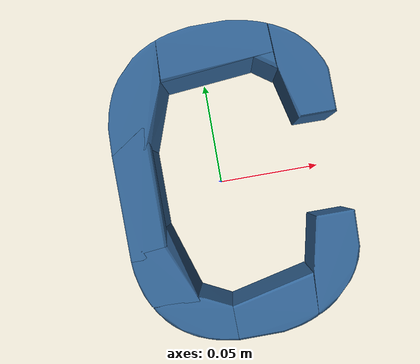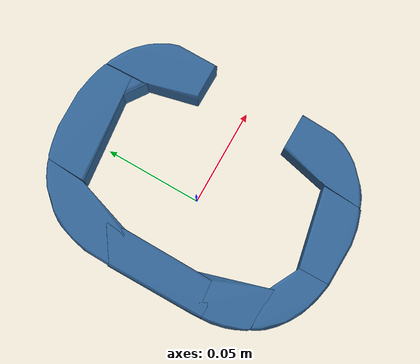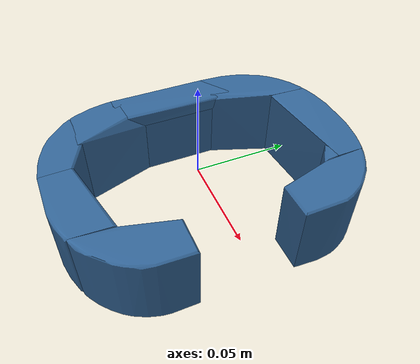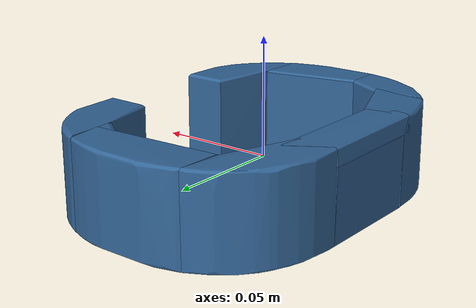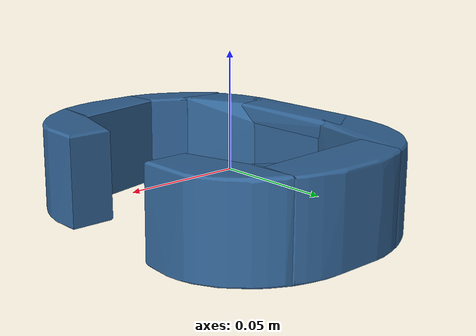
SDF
<?xml version='1.0' encoding='UTF-8'?>
<!-- This SDF was autogenerated by obj_to_drake_sdf.py -->
<sdf version="1.7">
  <model name="C_compromise_centered">
    <link name="C_compromise_centered">
      <inertial>
        <pose>0 0 0 0 0 0</pose>
        <mass>0.05</mass>
        <inertia>
          <ixx>0.00014073695</ixx>
          <iyy>7.4070699e-05</iyy>
          <izz>0.00020166662</izz>
          <ixy>-1.2429144e-06</ixy>
          <ixz>-1.0936042e-09</ixz>
          <iyz>1.2335543e-09</iyz>
        </inertia>
      </inertial>
      <visual name="convex_0">
        <pose>0 0 0 0 0 0</pose>
        <geometry>
          <mesh>
            <uri>C_compromise_centered_convex_0.obj</uri>
          </mesh>
        </geometry>
        <material>
          <diffuse>0.19607843137254902 0.39215686274509803 0.5882352941176471 1</diffuse>
        </material>
      </visual>
      <collision name="convex_0_volume">
        <pose>0 0 0 0 0 0</pose>
        <geometry>
          <mesh>
            <uri>C_compromise_centered_convex_0.obj</uri>
          </mesh>
        </geometry>
        <drake:proximity_properties xmlns:drake="uri:drake">
          <drake:compliant_hydroelastic/>
          <drake:hydroelastic_modulus> 3.0e7 </drake:hydroelastic_modulus>
          <drake:mesh_resolution_hint> 0.02 </drake:mesh_resolution_hint>
          <drake:hunt_crossley_dissipation>10</drake:hunt_crossley_dissipation>
          <drake:mu_dynamic>0.3</drake:mu_dynamic>
        </drake:proximity_properties>
      </collision>
      <visual name="convex_1">
        <pose>0 0 0 0 0 0</pose>
        <geometry>
          <mesh>
            <uri>C_compromise_centered_convex_1.obj</uri>
          </mesh>
        </geometry>
        <material>
          <diffuse>0.19607843137254902 0.39215686274509803 0.5882352941176471 1</diffuse>
        </material>
      </visual>
      <collision name="convex_1_volume">
        <pose>0 0 0 0 0 0</pose>
        <geometry>
          <mesh>
            <uri>C_compromise_centered_convex_1.obj</uri>
          </mesh>
        </geometry>
        <drake:proximity_properties xmlns:drake="uri:drake">
          <drake:compliant_hydroelastic/>
          <drake:hydroelastic_modulus> 3.0e7 </drake:hydroelastic_modulus>
          <drake:mesh_resolution_hint> 0.02 </drake:mesh_resolution_hint>
          <drake:hunt_crossley_dissipation>10</drake:hunt_crossley_dissipation>
          <drake:mu_dynamic>0.3</drake:mu_dynamic>
        </drake:proximity_properties>
      </collision>
      <visual name="convex_2">
        <pose>0 0 0 0 0 0</pose>
        <geometry>
          <mesh>
            <uri>C_compromise_centered_convex_2.obj</uri>
          </mesh>
        </geometry>
        <material>
          <diffuse>0.19607843137254902 0.39215686274509803 0.5882352941176471 1</diffuse>
        </material>
      </visual>
      <collision name="convex_2_volume">
        <pose>0 0 0 0 0 0</pose>
        <geometry>
          <mesh>
            <uri>C_compromise_centered_convex_2.obj</uri>
          </mesh>
        </geometry>
        <drake:proximity_properties xmlns:drake="uri:drake">
          <drake:compliant_hydroelastic/>
          <drake:hydroelastic_modulus> 3.0e7 </drake:hydroelastic_modulus>
          <drake:mesh_resolution_hint> 0.02 </drake:mesh_resolution_hint>
          <drake:hunt_crossley_dissipation>10</drake:hunt_crossley_dissipation>
          <drake:mu_dynamic>0.3</drake:mu_dynamic>
        </drake:proximity_properties>
      </collision>
      <visual name="convex_3">
        <pose>0 0 0 0 0 0</pose>
        <geometry>
          <mesh>
            <uri>C_compromise_centered_convex_3.obj</uri>
          </mesh>
        </geometry>
        <material>
          <diffuse>0.19607843137254902 0.39215686274509803 0.5882352941176471 1</diffuse>
        </material>
      </visual>
      <collision name="convex_3_volume">
        <pose>0 0 0 0 0 0</pose>
        <geometry>
          <mesh>
            <uri>C_compromise_centered_convex_3.obj</uri>
          </mesh>
        </geometry>
        <drake:proximity_properties xmlns:drake="uri:drake">
          <drake:compliant_hydroelastic/>
          <drake:hydroelastic_modulus> 3.0e7 </drake:hydroelastic_modulus>
          <drake:mesh_resolution_hint> 0.02 </drake:mesh_resolution_hint>
          <drake:hunt_crossley_dissipation>10</drake:hunt_crossley_dissipation>
          <drake:mu_dynamic>0.3</drake:mu_dynamic>
        </drake:proximity_properties>
      </collision>
      <visual name="convex_4">
        <pose>0 0 0 0 0 0</pose>
        <geometry>
          <mesh>
            <uri>C_compromise_centered_convex_4.obj</uri>
          </mesh>
        </geometry>
        <material>
          <diffuse>0.19607843137254902 0.39215686274509803 0.5882352941176471 1</diffuse>
        </material>
      </visual>
      <collision name="convex_4_volume">
        <pose>0 0 0 0 0 0</pose>
        <geometry>
          <mesh>
            <uri>C_compromise_centered_convex_4.obj</uri>
          </mesh>
        </geometry>
        <drake:proximity_properties xmlns:drake="uri:drake">
          <drake:compliant_hydroelastic/>
          <drake:hydroelastic_modulus> 3.0e7 </drake:hydroelastic_modulus>
          <drake:mesh_resolution_hint> 0.02 </drake:mesh_resolution_hint>
          <drake:hunt_crossley_dissipation>10</drake:hunt_crossley_dissipation>
          <drake:mu_dynamic>0.3</drake:mu_dynamic>
        </drake:proximity_properties>
      </collision>
      <visual name="convex_5">
        <pose>0 0 0 0 0 0</pose>
        <geometry>
          <mesh>
            <uri>C_compromise_centered_convex_5.obj</uri>
          </mesh>
        </geometry>
        <material>
          <diffuse>0.19607843137254902 0.39215686274509803 0.5882352941176471 1</diffuse>
        </material>
      </visual>
      <collision name="convex_5_volume">
        <pose>0 0 0 0 0 0</pose>
        <geometry>
          <mesh>
            <uri>C_compromise_centered_convex_5.obj</uri>
          </mesh>
        </geometry>
        <drake:proximity_properties xmlns:drake="uri:drake">
          <drake:compliant_hydroelastic/>
          <drake:hydroelastic_modulus> 3.0e7 </drake:hydroelastic_modulus>
          <drake:mesh_resolution_hint> 0.02 </drake:mesh_resolution_hint>
          <drake:hunt_crossley_dissipation>10</drake:hunt_crossley_dissipation>
          <drake:mu_dynamic>0.3</drake:mu_dynamic>
        </drake:proximity_properties>
      </collision>
      <visual name="convex_6">
        <pose>0 0 0 0 0 0</pose>
        <geometry>
          <mesh>
            <uri>C_compromise_centered_convex_6.obj</uri>
          </mesh>
        </geometry>
        <material>
          <diffuse>0.19607843137254902 0.39215686274509803 0.5882352941176471 1</diffuse>
        </material>
      </visual>
      <collision name="convex_6_volume">
        <pose>0 0 0 0 0 0</pose>
        <geometry>
          <mesh>
            <uri>C_compromise_centered_convex_6.obj</uri>
          </mesh>
        </geometry>
        <drake:proximity_properties xmlns:drake="uri:drake">
          <drake:compliant_hydroelastic/>
          <drake:hydroelastic_modulus> 3.0e7 </drake:hydroelastic_modulus>
          <drake:mesh_resolution_hint> 0.02 </drake:mesh_resolution_hint>
          <drake:hunt_crossley_dissipation>10</drake:hunt_crossley_dissipation>
          <drake:mu_dynamic>0.3</drake:mu_dynamic>
        </drake:proximity_properties>
      </collision>
      <visual name="convex_7">
        <pose>0 0 0 0 0 0</pose>
        <geometry>
          <mesh>
            <uri>C_compromise_centered_convex_7.obj</uri>
          </mesh>
        </geometry>
        <material>
          <diffuse>0.19607843137254902 0.39215686274509803 0.5882352941176471 1</diffuse>
        </material>
      </visual>
      <collision name="convex_7_volume">
        <pose>0 0 0 0 0 0</pose>
        <geometry>
          <mesh>
            <uri>C_compromise_centered_convex_7.obj</uri>
          </mesh>
        </geometry>
        <drake:proximity_properties xmlns:drake="uri:drake">
          <drake:compliant_hydroelastic/>
          <drake:hydroelastic_modulus> 3.0e7 </drake:hydroelastic_modulus>
          <drake:mesh_resolution_hint> 0.02 </drake:mesh_resolution_hint>
          <drake:hunt_crossley_dissipation>10</drake:hunt_crossley_dissipation>
          <drake:mu_dynamic>0.3</drake:mu_dynamic>
        </drake:proximity_properties>
      </collision>
      <visual name="convex_8">
        <pose>0 0 0 0 0 0</pose>
        <geometry>
          <mesh>
            <uri>C_compromise_centered_convex_8.obj</uri>
          </mesh>
        </geometry>
        <material>
          <diffuse>0.19607843137254902 0.39215686274509803 0.5882352941176471 1</diffuse>
        </material>
      </visual>
      <collision name="convex_8_volume">
        <pose>0 0 0 0 0 0</pose>
        <geometry>
          <mesh>
            <uri>C_compromise_centered_convex_8.obj</uri>
          </mesh>
        </geometry>
        <drake:proximity_properties xmlns:drake="uri:drake">
          <drake:compliant_hydroelastic/>
          <drake:hydroelastic_modulus> 3.0e7 </drake:hydroelastic_modulus>
          <drake:mesh_resolution_hint> 0.02 </drake:mesh_resolution_hint>
          <drake:hunt_crossley_dissipation>10</drake:hunt_crossley_dissipation>
          <drake:mu_dynamic>0.3</drake:mu_dynamic>
        </drake:proximity_properties>
      </collision>
      <visual name="convex_9">
        <pose>0 0 0 0 0 0</pose>
        <geometry>
          <mesh>
            <uri>C_compromise_centered_convex_9.obj</uri>
          </mesh>
        </geometry>
        <material>
          <diffuse>0.19607843137254902 0.39215686274509803 0.5882352941176471 1</diffuse>
        </material>
      </visual>
      <collision name="convex_9_volume">
        <pose>0 0 0 0 0 0</pose>
        <geometry>
          <mesh>
            <uri>C_compromise_centered_convex_9.obj</uri>
          </mesh>
        </geometry>
        <drake:proximity_properties xmlns:drake="uri:drake">
          <drake:compliant_hydroelastic/>
          <drake:hydroelastic_modulus> 3.0e7 </drake:hydroelastic_modulus>
          <drake:mesh_resolution_hint> 0.02 </drake:mesh_resolution_hint>
          <drake:hunt_crossley_dissipation>10</drake:hunt_crossley_dissipation>
          <drake:mu_dynamic>0.3</drake:mu_dynamic>
        </drake:proximity_properties>
      </collision>
    </link>
  </model>
</sdf>
